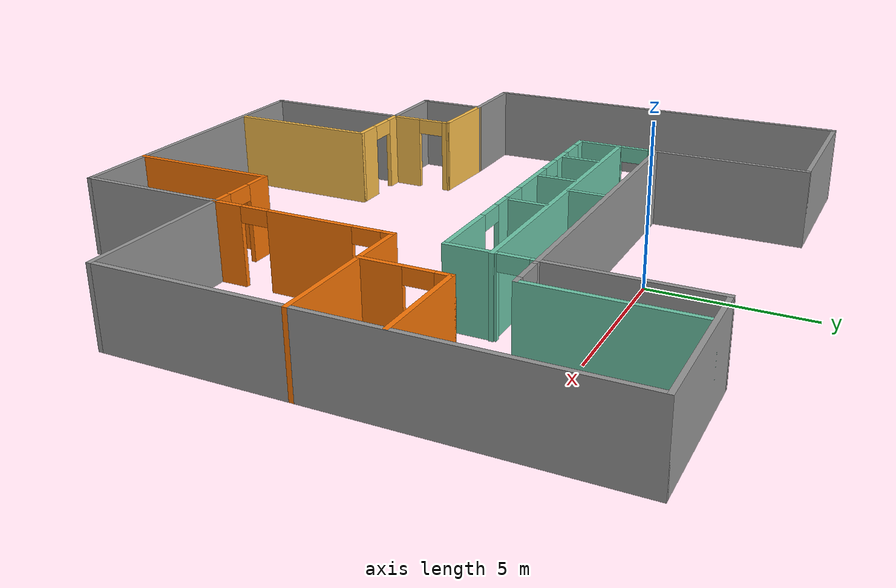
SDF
<?xml version='1.0'?>
<sdf version='1.6'>
  <model name='building'>
    <pose frame=''>-0.225451 -6.28405 0 0 -0 0</pose>
    <link name='Wall_0'>
      <collision name='Wall_0_Collision'>
        <geometry>
          <box>
            <size>5 0.15 2.5</size>
          </box>
        </geometry>
        <pose frame=''>0 0 1.25 0 -0 0</pose>
      </collision>
      <visual name='Wall_0_Visual'>
        <pose frame=''>0 0 1.25 0 -0 0</pose>
        <geometry>
          <box>
            <size>5 0.15 2.5</size>
          </box>
        </geometry>
        <material>
          <script>
            <uri>file://media/materials/scripts/gazebo.material</uri>
            <name>Gazebo/Grey</name>
          </script>
          <ambient>1 1 1 1</ambient>
        </material>
        <meta>
          <layer>0</layer>
        </meta>
      </visual>
      <pose frame=''>-7.34955 9.75605 0 0 -0 0</pose>
    </link>
    <link name='Wall_1'>
      <collision name='Wall_1_Collision'>
        <geometry>
          <box>
            <size>5 0.15 2.5</size>
          </box>
        </geometry>
        <pose frame=''>0 0 1.25 0 -0 0</pose>
      </collision>
      <visual name='Wall_1_Visual'>
        <pose frame=''>0 0 1.25 0 -0 0</pose>
        <geometry>
          <box>
            <size>5 0.15 2.5</size>
          </box>
        </geometry>
        <material>
          <script>
            <uri>file://media/materials/scripts/gazebo.material</uri>
            <name>Gazebo/Grey</name>
          </script>
          <ambient>1 1 1 1</ambient>
        </material>
        <meta>
          <layer>0</layer>
        </meta>
      </visual>
      <pose frame=''>-4.92455 7.33105 0 0 0 -1.5708</pose>
    </link>
    <link name='Wall_10'>
      <collision name='Wall_10_Collision'>
        <geometry>
          <box>
            <size>2.5 0.15 2.5</size>
          </box>
        </geometry>
        <pose frame=''>0 0 1.25 0 -0 0</pose>
      </collision>
      <visual name='Wall_10_Visual'>
        <pose frame=''>0 0 1.25 0 -0 0</pose>
        <geometry>
          <box>
            <size>2.5 0.15 2.5</size>
          </box>
        </geometry>
        <material>
          <script>
            <uri>file://media/materials/scripts/gazebo.material</uri>
            <name>Gazebo/Grey</name>
          </script>
          <ambient>1 1 1 1</ambient>
        </material>
        <meta>
          <layer>0</layer>
        </meta>
      </visual>
      <pose frame=''>-6.09955 -4.81295 0 0 -0 3.14159</pose>
    </link>
    <link name='Wall_11'>
      <collision name='Wall_11_Collision'>
        <geometry>
          <box>
            <size>2.344 0.15 2.5</size>
          </box>
        </geometry>
        <pose frame=''>0 0 1.25 0 -0 0</pose>
      </collision>
      <visual name='Wall_11_Visual'>
        <pose frame=''>0 0 1.25 0 -0 0</pose>
        <geometry>
          <box>
            <size>2.344 0.15 2.5</size>
          </box>
        </geometry>
        <material>
          <script>
            <uri>file://media/materials/scripts/gazebo.material</uri>
            <name>Gazebo/Grey</name>
          </script>
          <ambient>1 1 1 1</ambient>
        </material>
        <meta>
          <layer>0</layer>
        </meta>
      </visual>
      <pose frame=''>-7.27455 -3.71595 0 0 -0 1.5708</pose>
    </link>
    <link name='Wall_12'>
      <collision name='Wall_12_Collision'>
        <geometry>
          <box>
            <size>2.5 0.15 2.5</size>
          </box>
        </geometry>
        <pose frame=''>0 0 1.25 0 -0 0</pose>
      </collision>
      <visual name='Wall_12_Visual'>
        <pose frame=''>0 0 1.25 0 -0 0</pose>
        <geometry>
          <box>
            <size>2.5 0.15 2.5</size>
          </box>
        </geometry>
        <material>
          <script>
            <uri>file://media/materials/scripts/gazebo.material</uri>
            <name>Gazebo/Grey</name>
          </script>
          <ambient>1 1 1 1</ambient>
        </material>
        <meta>
          <layer>0</layer>
        </meta>
      </visual>
      <pose frame=''>-8.44955 -2.61895 0 0 -0 3.14159</pose>
    </link>
    <link name='Wall_13'>
      <collision name='Wall_13_Collision'>
        <geometry>
          <box>
            <size>12.5259 0.15 2.5</size>
          </box>
        </geometry>
        <pose frame=''>0 0 1.25 0 -0 0</pose>
      </collision>
      <visual name='Wall_13_Visual'>
        <pose frame=''>0 0 1.25 0 -0 0</pose>
        <geometry>
          <box>
            <size>12.5259 0.15 2.5</size>
          </box>
        </geometry>
        <material>
          <script>
            <uri>file://media/materials/scripts/gazebo.material</uri>
            <name>Gazebo/Grey</name>
          </script>
          <ambient>1 1 1 1</ambient>
        </material>
        <meta>
          <layer>0</layer>
        </meta>
      </visual>
      <pose frame=''>-9.69955 3.56855 0 0 -0 1.58292</pose>
    </link>
    <link name='Wall_15'>
      <pose frame=''>-3.74955 -4.81295 0 0 -0 0</pose>
      <visual name='Wall_15_Visual_0'>
        <pose frame=''>-0.942883 0 1.25 0 -0 0</pose>
        <geometry>
          <box>
            <size>0.614234 0.15 2.5</size>
          </box>
        </geometry>
        <material>
          <script>
            <uri>file://media/materials/scripts/gazebo.material</uri>
            <name>Gazebo/Grey</name>
          </script>
          <ambient>1 0.764706 0.305882 1</ambient>
        </material>
        <meta>
          <layer>0</layer>
        </meta>
      </visual>
      <collision name='Wall_15_Collision_0'>
        <geometry>
          <box>
            <size>0.614234 0.15 2.5</size>
          </box>
        </geometry>
        <pose frame=''>-0.942883 0 1.25 0 -0 0</pose>
      </collision>
      <visual name='Wall_15_Visual_1'>
        <pose frame=''>0.757117 0 1.25 0 -0 0</pose>
        <geometry>
          <box>
            <size>0.985766 0.15 2.5</size>
          </box>
        </geometry>
        <material>
          <script>
            <uri>file://media/materials/scripts/gazebo.material</uri>
            <name>Gazebo/Grey</name>
          </script>
          <ambient>1 0.764706 0.305882 1</ambient>
        </material>
        <meta>
          <layer>0</layer>
        </meta>
      </visual>
      <collision name='Wall_15_Collision_1'>
        <geometry>
          <box>
            <size>0.985766 0.15 2.5</size>
          </box>
        </geometry>
        <pose frame=''>0.757117 0 1.25 0 -0 0</pose>
      </collision>
      <visual name='Wall_15_Visual_2'>
        <pose frame=''>-0.185766 0 2.25 0 -0 0</pose>
        <geometry>
          <box>
            <size>0.9 0.15 0.5</size>
          </box>
        </geometry>
        <material>
          <script>
            <uri>file://media/materials/scripts/gazebo.material</uri>
            <name>Gazebo/Grey</name>
          </script>
          <ambient>1 0.764706 0.305882 1</ambient>
        </material>
        <meta>
          <layer>0</layer>
        </meta>
      </visual>
      <collision name='Wall_15_Collision_2'>
        <geometry>
          <box>
            <size>0.9 0.15 0.5</size>
          </box>
        </geometry>
        <pose frame=''>-0.185766 0 2.25 0 -0 0</pose>
      </collision>
    </link>
    <link name='Wall_16'>
      <collision name='Wall_16_Collision'>
        <geometry>
          <box>
            <size>5 0.15 2.5</size>
          </box>
        </geometry>
        <pose frame=''>0 0 1.25 0 -0 0</pose>
      </collision>
      <visual name='Wall_16_Visual'>
        <pose frame=''>0 0 1.25 0 -0 0</pose>
        <geometry>
          <box>
            <size>5 0.15 2.5</size>
          </box>
        </geometry>
        <material>
          <script>
            <uri>file://media/materials/scripts/gazebo.material</uri>
            <name>Gazebo/Grey</name>
          </script>
          <ambient>1 0.764706 0.305882 1</ambient>
        </material>
        <meta>
          <layer>0</layer>
        </meta>
      </visual>
      <pose frame=''>-2.57455 -7.23795 0 0 0 -1.5708</pose>
    </link>
    <link name='Wall_18'>
      <pose frame=''>3.75045 -5.09395 0 0 -0 3.14159</pose>
      <visual name='Wall_18_Visual_0'>
        <pose frame=''>-0.900353 0 1.25 0 -0 0</pose>
        <geometry>
          <box>
            <size>0.699294 0.15 2.5</size>
          </box>
        </geometry>
        <material>
          <script>
            <uri>file://media/materials/scripts/gazebo.material</uri>
            <name>Gazebo/Grey</name>
          </script>
          <ambient>0.996078 0.47451 0.0196078 1</ambient>
        </material>
        <meta>
          <layer>0</layer>
        </meta>
      </visual>
      <collision name='Wall_18_Collision_0'>
        <geometry>
          <box>
            <size>0.699294 0.15 2.5</size>
          </box>
        </geometry>
        <pose frame=''>-0.900353 0 1.25 0 -0 0</pose>
      </collision>
      <visual name='Wall_18_Visual_1'>
        <pose frame=''>0.799647 0 1.25 0 -0 0</pose>
        <geometry>
          <box>
            <size>0.900706 0.15 2.5</size>
          </box>
        </geometry>
        <material>
          <script>
            <uri>file://media/materials/scripts/gazebo.material</uri>
            <name>Gazebo/Grey</name>
          </script>
          <ambient>0.996078 0.47451 0.0196078 1</ambient>
        </material>
        <meta>
          <layer>0</layer>
        </meta>
      </visual>
      <collision name='Wall_18_Collision_1'>
        <geometry>
          <box>
            <size>0.900706 0.15 2.5</size>
          </box>
        </geometry>
        <pose frame=''>0.799647 0 1.25 0 -0 0</pose>
      </collision>
      <visual name='Wall_18_Visual_2'>
        <pose frame=''>-0.100706 0 2.25 0 -0 0</pose>
        <geometry>
          <box>
            <size>0.9 0.15 0.5</size>
          </box>
        </geometry>
        <material>
          <script>
            <uri>file://media/materials/scripts/gazebo.material</uri>
            <name>Gazebo/Grey</name>
          </script>
          <ambient>0.996078 0.47451 0.0196078 1</ambient>
        </material>
        <meta>
          <layer>0</layer>
        </meta>
      </visual>
      <collision name='Wall_18_Collision_2'>
        <geometry>
          <box>
            <size>0.9 0.15 0.5</size>
          </box>
        </geometry>
        <pose frame=''>-0.100706 0 2.25 0 -0 0</pose>
      </collision>
    </link>
    <link name='Wall_2'>
      <collision name='Wall_2_Collision'>
        <geometry>
          <box>
            <size>10 0.15 2.5</size>
          </box>
        </geometry>
        <pose frame=''>0 0 1.25 0 -0 0</pose>
      </collision>
      <visual name='Wall_2_Visual'>
        <pose frame=''>0 0 1.25 0 -0 0</pose>
        <geometry>
          <box>
            <size>10 0.15 2.5</size>
          </box>
        </geometry>
        <material>
          <script>
            <uri>file://media/materials/scripts/gazebo.material</uri>
            <name>Gazebo/Grey</name>
          </script>
          <ambient>1 1 1 1</ambient>
        </material>
        <meta>
          <layer>0</layer>
        </meta>
      </visual>
      <pose frame=''>0.000451 4.90605 0 0 -0 0</pose>
    </link>
    <link name='Wall_21'>
      <collision name='Wall_21_Collision'>
        <geometry>
          <box>
            <size>4.813 0.15 2.5</size>
          </box>
        </geometry>
        <pose frame=''>0 0 1.25 0 -0 0</pose>
      </collision>
      <visual name='Wall_21_Visual'>
        <pose frame=''>0 0 1.25 0 -0 0</pose>
        <geometry>
          <box>
            <size>4.813 0.15 2.5</size>
          </box>
        </geometry>
        <material>
          <script>
            <uri>file://media/materials/scripts/gazebo.material</uri>
            <name>Gazebo/Grey</name>
          </script>
          <ambient>0.996078 0.47451 0.0196078 1</ambient>
        </material>
        <meta>
          <layer>0</layer>
        </meta>
      </visual>
      <pose frame=''>2.57545 -7.42545 0 0 0 -1.5708</pose>
    </link>
    <link name='Wall_23'>
      <pose frame=''>-4.92455 -3.76295 0 0 -0 1.5708</pose>
      <visual name='Wall_23_Visual_0'>
        <pose frame=''>-0.57792 0 1.25 0 -0 0</pose>
        <geometry>
          <box>
            <size>1.09416 0.15 2.5</size>
          </box>
        </geometry>
        <material>
          <script>
            <uri>file://media/materials/scripts/gazebo.material</uri>
            <name>Gazebo/Grey</name>
          </script>
          <ambient>1 0.764706 0.305882 1</ambient>
        </material>
        <meta>
          <layer>0</layer>
        </meta>
      </visual>
      <collision name='Wall_23_Collision_0'>
        <geometry>
          <box>
            <size>1.09416 0.15 2.5</size>
          </box>
        </geometry>
        <pose frame=''>-0.57792 0 1.25 0 -0 0</pose>
      </collision>
      <visual name='Wall_23_Visual_1'>
        <pose frame=''>0.99708 0 1.25 0 -0 0</pose>
        <geometry>
          <box>
            <size>0.255839 0.15 2.5</size>
          </box>
        </geometry>
        <material>
          <script>
            <uri>file://media/materials/scripts/gazebo.material</uri>
            <name>Gazebo/Grey</name>
          </script>
          <ambient>1 0.764706 0.305882 1</ambient>
        </material>
        <meta>
          <layer>0</layer>
        </meta>
      </visual>
      <collision name='Wall_23_Collision_1'>
        <geometry>
          <box>
            <size>0.255839 0.15 2.5</size>
          </box>
        </geometry>
        <pose frame=''>0.99708 0 1.25 0 -0 0</pose>
      </collision>
      <visual name='Wall_23_Visual_2'>
        <pose frame=''>0.419161 0 2.25 0 -0 0</pose>
        <geometry>
          <box>
            <size>0.9 0.15 0.5</size>
          </box>
        </geometry>
        <material>
          <script>
            <uri>file://media/materials/scripts/gazebo.material</uri>
            <name>Gazebo/Grey</name>
          </script>
          <ambient>1 0.764706 0.305882 1</ambient>
        </material>
        <meta>
          <layer>0</layer>
        </meta>
      </visual>
      <collision name='Wall_23_Collision_2'>
        <geometry>
          <box>
            <size>0.9 0.15 0.5</size>
          </box>
        </geometry>
        <pose frame=''>0.419161 0 2.25 0 -0 0</pose>
      </collision>
    </link>
    <link name='Wall_24'>
      <collision name='Wall_24_Collision'>
        <geometry>
          <box>
            <size>2.50188 0.15 2.5</size>
          </box>
        </geometry>
        <pose frame=''>0 0 1.25 0 -0 0</pose>
      </collision>
      <visual name='Wall_24_Visual'>
        <pose frame=''>0 0 1.25 0 -0 0</pose>
        <geometry>
          <box>
            <size>2.50188 0.15 2.5</size>
          </box>
        </geometry>
        <material>
          <script>
            <uri>file://media/materials/scripts/gazebo.material</uri>
            <name>Gazebo/Grey</name>
          </script>
          <ambient>1 0.764706 0.305882 1</ambient>
        </material>
        <meta>
          <layer>0</layer>
        </meta>
      </visual>
      <pose frame=''>-6.09955 -2.66595 0 0 -0 3.10161</pose>
    </link>
    <link name='Wall_26'>
      <pose frame=''>4.92545 -2.16895 0 0 -0 1.5708</pose>
      <visual name='Wall_26_Visual_0'>
        <pose frame=''>-2.49069 0 1.25 0 -0 0</pose>
        <geometry>
          <box>
            <size>1.01863 0.15 2.5</size>
          </box>
        </geometry>
        <material>
          <script>
            <uri>file://media/materials/scripts/gazebo.material</uri>
            <name>Gazebo/Grey</name>
          </script>
          <ambient>0.996078 0.47451 0.0196078 1</ambient>
        </material>
        <meta>
          <layer>0</layer>
        </meta>
      </visual>
      <collision name='Wall_26_Collision_0'>
        <geometry>
          <box>
            <size>1.01863 0.15 2.5</size>
          </box>
        </geometry>
        <pose frame=''>-2.49069 0 1.25 0 -0 0</pose>
      </collision>
      <visual name='Wall_26_Visual_1'>
        <pose frame=''>0.299469 0 1.25 0 -0 0</pose>
        <geometry>
          <box>
            <size>2.76168 0.15 2.5</size>
          </box>
        </geometry>
        <material>
          <script>
            <uri>file://media/materials/scripts/gazebo.material</uri>
            <name>Gazebo/Grey</name>
          </script>
          <ambient>0.996078 0.47451 0.0196078 1</ambient>
        </material>
        <meta>
          <layer>0</layer>
        </meta>
      </visual>
      <collision name='Wall_26_Collision_1'>
        <geometry>
          <box>
            <size>2.76168 0.15 2.5</size>
          </box>
        </geometry>
        <pose frame=''>0.299469 0 1.25 0 -0 0</pose>
      </collision>
      <visual name='Wall_26_Visual_2'>
        <pose frame=''>2.79015 0 1.25 0 -0 0</pose>
        <geometry>
          <box>
            <size>0.419692 0.15 2.5</size>
          </box>
        </geometry>
        <material>
          <script>
            <uri>file://media/materials/scripts/gazebo.material</uri>
            <name>Gazebo/Grey</name>
          </script>
          <ambient>0.996078 0.47451 0.0196078 1</ambient>
        </material>
        <meta>
          <layer>0</layer>
        </meta>
      </visual>
      <collision name='Wall_26_Collision_2'>
        <geometry>
          <box>
            <size>0.419692 0.15 2.5</size>
          </box>
        </geometry>
        <pose frame=''>2.79015 0 1.25 0 -0 0</pose>
      </collision>
      <visual name='Wall_26_Visual_3'>
        <pose frame=''>-1.53137 0 2.25 0 -0 0</pose>
        <geometry>
          <box>
            <size>0.9 0.15 0.5</size>
          </box>
        </geometry>
        <material>
          <script>
            <uri>file://media/materials/scripts/gazebo.material</uri>
            <name>Gazebo/Grey</name>
          </script>
          <ambient>0.996078 0.47451 0.0196078 1</ambient>
        </material>
        <meta>
          <layer>0</layer>
        </meta>
      </visual>
      <collision name='Wall_26_Collision_3'>
        <geometry>
          <box>
            <size>0.9 0.15 0.5</size>
          </box>
        </geometry>
        <pose frame=''>-1.53137 0 2.25 0 -0 0</pose>
      </collision>
      <visual name='Wall_26_Visual_4'>
        <pose frame=''>2.13031 0 2.25 0 -0 0</pose>
        <geometry>
          <box>
            <size>0.9 0.15 0.5</size>
          </box>
        </geometry>
        <material>
          <script>
            <uri>file://media/materials/scripts/gazebo.material</uri>
            <name>Gazebo/Grey</name>
          </script>
          <ambient>0.996078 0.47451 0.0196078 1</ambient>
        </material>
        <meta>
          <layer>0</layer>
        </meta>
      </visual>
      <collision name='Wall_26_Collision_4'>
        <geometry>
          <box>
            <size>0.9 0.15 0.5</size>
          </box>
        </geometry>
        <pose frame=''>2.13031 0 2.25 0 -0 0</pose>
      </collision>
    </link>
    <link name='Wall_27'>
      <collision name='Wall_27_Collision'>
        <geometry>
          <box>
            <size>5 0.15 2.5</size>
          </box>
        </geometry>
        <pose frame=''>0 0 1.25 0 -0 0</pose>
      </collision>
      <visual name='Wall_27_Visual'>
        <pose frame=''>0 0 1.25 0 -0 0</pose>
        <geometry>
          <box>
            <size>5 0.15 2.5</size>
          </box>
        </geometry>
        <material>
          <script>
            <uri>file://media/materials/scripts/gazebo.material</uri>
            <name>Gazebo/Grey</name>
          </script>
          <ambient>0.996078 0.47451 0.0196078 1</ambient>
        </material>
        <meta>
          <layer>0</layer>
        </meta>
      </visual>
      <pose frame=''>7.35045 0.756049 0 0 -0 0</pose>
    </link>
    <link name='Wall_29'>
      <pose frame=''>6.65238 2.07506 0 0 -0 1.5708</pose>
      <visual name='Wall_29_Visual_0'>
        <pose frame=''>-0.708109 0 1.25 0 -0 0</pose>
        <geometry>
          <box>
            <size>1.33378 0.15 2.5</size>
          </box>
        </geometry>
        <material>
          <script>
            <uri>file://media/materials/scripts/gazebo.material</uri>
            <name>Gazebo/Grey</name>
          </script>
          <ambient>0.996078 0.47451 0.0196078 1</ambient>
        </material>
        <meta>
          <layer>0</layer>
        </meta>
      </visual>
      <collision name='Wall_29_Collision_0'>
        <geometry>
          <box>
            <size>1.33378 0.15 2.5</size>
          </box>
        </geometry>
        <pose frame=''>-0.708109 0 1.25 0 -0 0</pose>
      </collision>
      <visual name='Wall_29_Visual_1'>
        <pose frame=''>1.11689 0 1.25 0 -0 0</pose>
        <geometry>
          <box>
            <size>0.516217 0.15 2.5</size>
          </box>
        </geometry>
        <material>
          <script>
            <uri>file://media/materials/scripts/gazebo.material</uri>
            <name>Gazebo/Grey</name>
          </script>
          <ambient>0.996078 0.47451 0.0196078 1</ambient>
        </material>
        <meta>
          <layer>0</layer>
        </meta>
      </visual>
      <collision name='Wall_29_Collision_1'>
        <geometry>
          <box>
            <size>0.516217 0.15 2.5</size>
          </box>
        </geometry>
        <pose frame=''>1.11689 0 1.25 0 -0 0</pose>
      </collision>
      <visual name='Wall_29_Visual_2'>
        <pose frame=''>0.408783 0 2.25 0 -0 0</pose>
        <geometry>
          <box>
            <size>0.9 0.15 0.5</size>
          </box>
        </geometry>
        <material>
          <script>
            <uri>file://media/materials/scripts/gazebo.material</uri>
            <name>Gazebo/Grey</name>
          </script>
          <ambient>0.996078 0.47451 0.0196078 1</ambient>
        </material>
        <meta>
          <layer>0</layer>
        </meta>
      </visual>
      <collision name='Wall_29_Collision_2'>
        <geometry>
          <box>
            <size>0.9 0.15 0.5</size>
          </box>
        </geometry>
        <pose frame=''>0.408783 0 2.25 0 -0 0</pose>
      </collision>
    </link>
    <link name='Wall_3'>
      <collision name='Wall_3_Collision'>
        <geometry>
          <box>
            <size>5 0.15 2.5</size>
          </box>
        </geometry>
        <pose frame=''>0 0 1.25 0 -0 0</pose>
      </collision>
      <visual name='Wall_3_Visual'>
        <pose frame=''>0 0 1.25 0 -0 0</pose>
        <geometry>
          <box>
            <size>5 0.15 2.5</size>
          </box>
        </geometry>
        <material>
          <script>
            <uri>file://media/materials/scripts/gazebo.material</uri>
            <name>Gazebo/Grey</name>
          </script>
          <ambient>1 1 1 1</ambient>
        </material>
        <meta>
          <layer>0</layer>
        </meta>
      </visual>
      <pose frame=''>4.92545 7.33105 0 0 -0 1.5708</pose>
    </link>
    <link name='Wall_30'>
      <collision name='Wall_30_Collision'>
        <geometry>
          <box>
            <size>3.25 0.15 2.5</size>
          </box>
        </geometry>
        <pose frame=''>0 0 1.25 0 -0 0</pose>
      </collision>
      <visual name='Wall_30_Visual'>
        <pose frame=''>0 0 1.25 0 -0 0</pose>
        <geometry>
          <box>
            <size>3.25 0.15 2.5</size>
          </box>
        </geometry>
        <material>
          <script>
            <uri>file://media/materials/scripts/gazebo.material</uri>
            <name>Gazebo/Grey</name>
          </script>
          <ambient>0.996078 0.47451 0.0196078 1</ambient>
        </material>
        <meta>
          <layer>0</layer>
        </meta>
      </visual>
      <pose frame=''>8.20237 3.37506 0 0 -0 0</pose>
    </link>
    <link name='Wall_32'>
      <pose frame=''>5.60045 4.90605 0 0 -0 0</pose>
      <visual name='Wall_32_Visual_0'>
        <pose frame=''>-0.605415 0 1.25 0 -0 0</pose>
        <geometry>
          <box>
            <size>0.289171 0.15 2.5</size>
          </box>
        </geometry>
        <material>
          <script>
            <uri>file://media/materials/scripts/gazebo.material</uri>
            <name>Gazebo/Grey</name>
          </script>
          <ambient>1 1 1 1</ambient>
        </material>
        <meta>
          <layer>0</layer>
        </meta>
      </visual>
      <collision name='Wall_32_Collision_0'>
        <geometry>
          <box>
            <size>0.289171 0.15 2.5</size>
          </box>
        </geometry>
        <pose frame=''>-0.605415 0 1.25 0 -0 0</pose>
      </collision>
      <visual name='Wall_32_Visual_1'>
        <pose frame=''>0.594585 0 1.25 0 -0 0</pose>
        <geometry>
          <box>
            <size>0.310829 0.15 2.5</size>
          </box>
        </geometry>
        <material>
          <script>
            <uri>file://media/materials/scripts/gazebo.material</uri>
            <name>Gazebo/Grey</name>
          </script>
          <ambient>1 1 1 1</ambient>
        </material>
        <meta>
          <layer>0</layer>
        </meta>
      </visual>
      <collision name='Wall_32_Collision_1'>
        <geometry>
          <box>
            <size>0.310829 0.15 2.5</size>
          </box>
        </geometry>
        <pose frame=''>0.594585 0 1.25 0 -0 0</pose>
      </collision>
      <visual name='Wall_32_Visual_2'>
        <pose frame=''>-0.010829 0 2.25 0 -0 0</pose>
        <geometry>
          <box>
            <size>0.9 0.15 0.5</size>
          </box>
        </geometry>
        <material>
          <script>
            <uri>file://media/materials/scripts/gazebo.material</uri>
            <name>Gazebo/Grey</name>
          </script>
          <ambient>1 1 1 1</ambient>
        </material>
        <meta>
          <layer>0</layer>
        </meta>
      </visual>
      <collision name='Wall_32_Collision_2'>
        <geometry>
          <box>
            <size>0.9 0.15 0.5</size>
          </box>
        </geometry>
        <pose frame=''>-0.010829 0 2.25 0 -0 0</pose>
      </collision>
    </link>
    <link name='Wall_33'>
      <collision name='Wall_33_Collision'>
        <geometry>
          <box>
            <size>5 0.15 2.5</size>
          </box>
        </geometry>
        <pose frame=''>0 0 1.25 0 -0 0</pose>
      </collision>
      <visual name='Wall_33_Visual'>
        <pose frame=''>0 0 1.25 0 -0 0</pose>
        <geometry>
          <box>
            <size>5 0.15 2.5</size>
          </box>
        </geometry>
        <material>
          <script>
            <uri>file://media/materials/scripts/gazebo.material</uri>
            <name>Gazebo/Grey</name>
          </script>
          <ambient>0.435294 0.796078 0.67451 1</ambient>
        </material>
        <meta>
          <layer>0</layer>
        </meta>
      </visual>
      <pose frame=''>6.27545 7.33105 0 0 -0 1.5708</pose>
    </link>
    <link name='Wall_35'>
      <pose frame=''>-4.92455 3.60605 0 0 0 -1.5708</pose>
      <visual name='Wall_35_Visual_0'>
        <pose frame=''>-1.20915 0 1.25 0 -0 0</pose>
        <geometry>
          <box>
            <size>0.3317 0.15 2.5</size>
          </box>
        </geometry>
        <material>
          <script>
            <uri>file://media/materials/scripts/gazebo.material</uri>
            <name>Gazebo/Grey</name>
          </script>
          <ambient>0.435294 0.796078 0.67451 1</ambient>
        </material>
        <meta>
          <layer>0</layer>
        </meta>
      </visual>
      <collision name='Wall_35_Collision_0'>
        <geometry>
          <box>
            <size>0.3317 0.15 2.5</size>
          </box>
        </geometry>
        <pose frame=''>-1.20915 0 1.25 0 -0 0</pose>
      </collision>
      <visual name='Wall_35_Visual_1'>
        <pose frame=''>0.61585 0 1.25 0 -0 0</pose>
        <geometry>
          <box>
            <size>1.5183 0.15 2.5</size>
          </box>
        </geometry>
        <material>
          <script>
            <uri>file://media/materials/scripts/gazebo.material</uri>
            <name>Gazebo/Grey</name>
          </script>
          <ambient>0.435294 0.796078 0.67451 1</ambient>
        </material>
        <meta>
          <layer>0</layer>
        </meta>
      </visual>
      <collision name='Wall_35_Collision_1'>
        <geometry>
          <box>
            <size>1.5183 0.15 2.5</size>
          </box>
        </geometry>
        <pose frame=''>0.61585 0 1.25 0 -0 0</pose>
      </collision>
      <visual name='Wall_35_Visual_2'>
        <pose frame=''>-0.5933 0 2.25 0 -0 0</pose>
        <geometry>
          <box>
            <size>0.9 0.15 0.5</size>
          </box>
        </geometry>
        <material>
          <script>
            <uri>file://media/materials/scripts/gazebo.material</uri>
            <name>Gazebo/Grey</name>
          </script>
          <ambient>0.435294 0.796078 0.67451 1</ambient>
        </material>
        <meta>
          <layer>0</layer>
        </meta>
      </visual>
      <collision name='Wall_35_Collision_2'>
        <geometry>
          <box>
            <size>0.9 0.15 0.5</size>
          </box>
        </geometry>
        <pose frame=''>-0.5933 0 2.25 0 -0 0</pose>
      </collision>
    </link>
    <link name='Wall_36'>
      <pose frame=''>0.000451 2.30605 0 0 -0 0</pose>
      <visual name='Wall_36_Visual_0'>
        <pose frame=''>-4.74054 0 1.25 0 -0 0</pose>
        <geometry>
          <box>
            <size>0.518918 0.15 2.5</size>
          </box>
        </geometry>
        <material>
          <script>
            <uri>file://media/materials/scripts/gazebo.material</uri>
            <name>Gazebo/Grey</name>
          </script>
          <ambient>0.435294 0.796078 0.67451 1</ambient>
        </material>
        <meta>
          <layer>0</layer>
        </meta>
      </visual>
      <collision name='Wall_36_Collision_0'>
        <geometry>
          <box>
            <size>0.518918 0.15 2.5</size>
          </box>
        </geometry>
        <pose frame=''>-4.74054 0 1.25 0 -0 0</pose>
      </collision>
      <visual name='Wall_36_Visual_1'>
        <pose frame=''>-3.12154 0 1.25 0 -0 0</pose>
        <geometry>
          <box>
            <size>0.919085 0.15 2.5</size>
          </box>
        </geometry>
        <material>
          <script>
            <uri>file://media/materials/scripts/gazebo.material</uri>
            <name>Gazebo/Grey</name>
          </script>
          <ambient>0.435294 0.796078 0.67451 1</ambient>
        </material>
        <meta>
          <layer>0</layer>
        </meta>
      </visual>
      <collision name='Wall_36_Collision_1'>
        <geometry>
          <box>
            <size>0.919085 0.15 2.5</size>
          </box>
        </geometry>
        <pose frame=''>-3.12154 0 1.25 0 -0 0</pose>
      </collision>
      <visual name='Wall_36_Visual_2'>
        <pose frame=''>-0.79418 0 1.25 0 -0 0</pose>
        <geometry>
          <box>
            <size>1.93563 0.15 2.5</size>
          </box>
        </geometry>
        <material>
          <script>
            <uri>file://media/materials/scripts/gazebo.material</uri>
            <name>Gazebo/Grey</name>
          </script>
          <ambient>0.435294 0.796078 0.67451 1</ambient>
        </material>
        <meta>
          <layer>0</layer>
        </meta>
      </visual>
      <collision name='Wall_36_Collision_2'>
        <geometry>
          <box>
            <size>1.93563 0.15 2.5</size>
          </box>
        </geometry>
        <pose frame=''>-0.79418 0 1.25 0 -0 0</pose>
      </collision>
      <visual name='Wall_36_Visual_3'>
        <pose frame=''>1.42617 0 1.25 0 -0 0</pose>
        <geometry>
          <box>
            <size>0.705075 0.15 2.5</size>
          </box>
        </geometry>
        <material>
          <script>
            <uri>file://media/materials/scripts/gazebo.material</uri>
            <name>Gazebo/Grey</name>
          </script>
          <ambient>0.435294 0.796078 0.67451 1</ambient>
        </material>
        <meta>
          <layer>0</layer>
        </meta>
      </visual>
      <collision name='Wall_36_Collision_3'>
        <geometry>
          <box>
            <size>0.705075 0.15 2.5</size>
          </box>
        </geometry>
        <pose frame=''>1.42617 0 1.25 0 -0 0</pose>
      </collision>
      <visual name='Wall_36_Visual_4'>
        <pose frame=''>3.83935 0 1.25 0 -0 0</pose>
        <geometry>
          <box>
            <size>2.32129 0.15 2.5</size>
          </box>
        </geometry>
        <material>
          <script>
            <uri>file://media/materials/scripts/gazebo.material</uri>
            <name>Gazebo/Grey</name>
          </script>
          <ambient>0.435294 0.796078 0.67451 1</ambient>
        </material>
        <meta>
          <layer>0</layer>
        </meta>
      </visual>
      <collision name='Wall_36_Collision_4'>
        <geometry>
          <box>
            <size>2.32129 0.15 2.5</size>
          </box>
        </geometry>
        <pose frame=''>3.83935 0 1.25 0 -0 0</pose>
      </collision>
      <visual name='Wall_36_Visual_5'>
        <pose frame=''>-4.03108 0 2.25 0 -0 0</pose>
        <geometry>
          <box>
            <size>0.9 0.15 0.5</size>
          </box>
        </geometry>
        <material>
          <script>
            <uri>file://media/materials/scripts/gazebo.material</uri>
            <name>Gazebo/Grey</name>
          </script>
          <ambient>0.435294 0.796078 0.67451 1</ambient>
        </material>
        <meta>
          <layer>0</layer>
        </meta>
      </visual>
      <collision name='Wall_36_Collision_5'>
        <geometry>
          <box>
            <size>0.9 0.15 0.5</size>
          </box>
        </geometry>
        <pose frame=''>-4.03108 0 2.25 0 -0 0</pose>
      </collision>
      <visual name='Wall_36_Visual_6'>
        <pose frame=''>-2.212 0 2.25 0 -0 0</pose>
        <geometry>
          <box>
            <size>0.9 0.15 0.5</size>
          </box>
        </geometry>
        <material>
          <script>
            <uri>file://media/materials/scripts/gazebo.material</uri>
            <name>Gazebo/Grey</name>
          </script>
          <ambient>0.435294 0.796078 0.67451 1</ambient>
        </material>
        <meta>
          <layer>0</layer>
        </meta>
      </visual>
      <collision name='Wall_36_Collision_6'>
        <geometry>
          <box>
            <size>0.9 0.15 0.5</size>
          </box>
        </geometry>
        <pose frame=''>-2.212 0 2.25 0 -0 0</pose>
      </collision>
      <visual name='Wall_36_Visual_7'>
        <pose frame=''>0.623636 0 2.25 0 -0 0</pose>
        <geometry>
          <box>
            <size>0.9 0.15 0.5</size>
          </box>
        </geometry>
        <material>
          <script>
            <uri>file://media/materials/scripts/gazebo.material</uri>
            <name>Gazebo/Grey</name>
          </script>
          <ambient>0.435294 0.796078 0.67451 1</ambient>
        </material>
        <meta>
          <layer>0</layer>
        </meta>
      </visual>
      <collision name='Wall_36_Collision_7'>
        <geometry>
          <box>
            <size>0.9 0.15 0.5</size>
          </box>
        </geometry>
        <pose frame=''>0.623636 0 2.25 0 -0 0</pose>
      </collision>
      <visual name='Wall_36_Visual_8'>
        <pose frame=''>2.22871 0 2.25 0 -0 0</pose>
        <geometry>
          <box>
            <size>0.9 0.15 0.5</size>
          </box>
        </geometry>
        <material>
          <script>
            <uri>file://media/materials/scripts/gazebo.material</uri>
            <name>Gazebo/Grey</name>
          </script>
          <ambient>0.435294 0.796078 0.67451 1</ambient>
        </material>
        <meta>
          <layer>0</layer>
        </meta>
      </visual>
      <collision name='Wall_36_Collision_8'>
        <geometry>
          <box>
            <size>0.9 0.15 0.5</size>
          </box>
        </geometry>
        <pose frame=''>2.22871 0 2.25 0 -0 0</pose>
      </collision>
    </link>
    <link name='Wall_37'>
      <pose frame=''>4.92545 3.60605 0 0 -0 1.5708</pose>
      <visual name='Wall_37_Visual_0'>
        <pose frame=''>-0.589099 0 1.25 0 -0 0</pose>
        <geometry>
          <box>
            <size>1.5718 0.15 2.5</size>
          </box>
        </geometry>
        <material>
          <script>
            <uri>file://media/materials/scripts/gazebo.material</uri>
            <name>Gazebo/Grey</name>
          </script>
          <ambient>0.435294 0.796078 0.67451 1</ambient>
        </material>
        <meta>
          <layer>0</layer>
        </meta>
      </visual>
      <collision name='Wall_37_Collision_0'>
        <geometry>
          <box>
            <size>1.5718 0.15 2.5</size>
          </box>
        </geometry>
        <pose frame=''>-0.589099 0 1.25 0 -0 0</pose>
      </collision>
      <visual name='Wall_37_Visual_1'>
        <pose frame=''>1.2359 0 1.25 0 -0 0</pose>
        <geometry>
          <box>
            <size>0.278198 0.15 2.5</size>
          </box>
        </geometry>
        <material>
          <script>
            <uri>file://media/materials/scripts/gazebo.material</uri>
            <name>Gazebo/Grey</name>
          </script>
          <ambient>0.435294 0.796078 0.67451 1</ambient>
        </material>
        <meta>
          <layer>0</layer>
        </meta>
      </visual>
      <collision name='Wall_37_Collision_1'>
        <geometry>
          <box>
            <size>0.278198 0.15 2.5</size>
          </box>
        </geometry>
        <pose frame=''>1.2359 0 1.25 0 -0 0</pose>
      </collision>
      <visual name='Wall_37_Visual_2'>
        <pose frame=''>0.646802 0 2.25 0 -0 0</pose>
        <geometry>
          <box>
            <size>0.9 0.15 0.5</size>
          </box>
        </geometry>
        <material>
          <script>
            <uri>file://media/materials/scripts/gazebo.material</uri>
            <name>Gazebo/Grey</name>
          </script>
          <ambient>0.435294 0.796078 0.67451 1</ambient>
        </material>
        <meta>
          <layer>0</layer>
        </meta>
      </visual>
      <collision name='Wall_37_Collision_2'>
        <geometry>
          <box>
            <size>0.9 0.15 0.5</size>
          </box>
        </geometry>
        <pose frame=''>0.646802 0 2.25 0 -0 0</pose>
      </collision>
    </link>
    <link name='Wall_39'>
      <collision name='Wall_39_Collision'>
        <geometry>
          <box>
            <size>10 0.15 2.5</size>
          </box>
        </geometry>
        <pose frame=''>0 0 1.25 0 -0 0</pose>
      </collision>
      <visual name='Wall_39_Visual'>
        <pose frame=''>0 0 1.25 0 -0 0</pose>
        <geometry>
          <box>
            <size>10 0.15 2.5</size>
          </box>
        </geometry>
        <material>
          <script>
            <uri>file://media/materials/scripts/gazebo.material</uri>
            <name>Gazebo/Grey</name>
          </script>
          <ambient>0.435294 0.796078 0.67451 1</ambient>
        </material>
        <meta>
          <layer>0</layer>
        </meta>
      </visual>
      <pose frame=''>0.03833 3.66432 0 0 -0 0</pose>
    </link>
    <link name='Wall_4'>
      <collision name='Wall_4_Collision'>
        <geometry>
          <box>
            <size>5 0.15 2.5</size>
          </box>
        </geometry>
        <pose frame=''>0 0 1.25 0 -0 0</pose>
      </collision>
      <visual name='Wall_4_Visual'>
        <pose frame=''>0 0 1.25 0 -0 0</pose>
        <geometry>
          <box>
            <size>5 0.15 2.5</size>
          </box>
        </geometry>
        <material>
          <script>
            <uri>file://media/materials/scripts/gazebo.material</uri>
            <name>Gazebo/Grey</name>
          </script>
          <ambient>1 1 1 1</ambient>
        </material>
        <meta>
          <layer>0</layer>
        </meta>
      </visual>
      <pose frame=''>7.35045 9.75605 0 0 -0 0</pose>
    </link>
    <link name='Wall_41'>
      <collision name='Wall_41_Collision'>
        <geometry>
          <box>
            <size>1.25 0.15 2.5</size>
          </box>
        </geometry>
        <pose frame=''>0 0 1.25 0 -0 0</pose>
      </collision>
      <visual name='Wall_41_Visual'>
        <pose frame=''>0 0 1.25 0 -0 0</pose>
        <geometry>
          <box>
            <size>1.25 0.15 2.5</size>
          </box>
        </geometry>
        <material>
          <script>
            <uri>file://media/materials/scripts/gazebo.material</uri>
            <name>Gazebo/Grey</name>
          </script>
          <ambient>0.435294 0.796078 0.67451 1</ambient>
        </material>
        <meta>
          <layer>0</layer>
        </meta>
      </visual>
      <pose frame=''>-0.231953 4.29138 0 0 0 -1.5708</pose>
    </link>
    <link name='Wall_43'>
      <collision name='Wall_43_Collision'>
        <geometry>
          <box>
            <size>1.25 0.15 2.5</size>
          </box>
        </geometry>
        <pose frame=''>0 0 1.25 0 -0 0</pose>
      </collision>
      <visual name='Wall_43_Visual'>
        <pose frame=''>0 0 1.25 0 -0 0</pose>
        <geometry>
          <box>
            <size>1.25 0.15 2.5</size>
          </box>
        </geometry>
        <material>
          <script>
            <uri>file://media/materials/scripts/gazebo.material</uri>
            <name>Gazebo/Grey</name>
          </script>
          <ambient>0.435294 0.796078 0.67451 1</ambient>
        </material>
        <meta>
          <layer>0</layer>
        </meta>
      </visual>
      <pose frame=''>-3.12109 3.00732 0 0 0 -1.5708</pose>
    </link>
    <link name='Wall_45'>
      <collision name='Wall_45_Collision'>
        <geometry>
          <box>
            <size>1.25 0.15 2.5</size>
          </box>
        </geometry>
        <pose frame=''>0 0 1.25 0 -0 0</pose>
      </collision>
      <visual name='Wall_45_Visual'>
        <pose frame=''>0 0 1.25 0 -0 0</pose>
        <geometry>
          <box>
            <size>1.25 0.15 2.5</size>
          </box>
        </geometry>
        <material>
          <script>
            <uri>file://media/materials/scripts/gazebo.material</uri>
            <name>Gazebo/Grey</name>
          </script>
          <ambient>0.435294 0.796078 0.67451 1</ambient>
        </material>
        <meta>
          <layer>0</layer>
        </meta>
      </visual>
      <pose frame=''>-1.08799 3.00732 0 0 0 -1.5708</pose>
    </link>
    <link name='Wall_47'>
      <collision name='Wall_47_Collision'>
        <geometry>
          <box>
            <size>1.25 0.15 2.5</size>
          </box>
        </geometry>
        <pose frame=''>0 0 1.25 0 -0 0</pose>
      </collision>
      <visual name='Wall_47_Visual'>
        <pose frame=''>0 0 1.25 0 -0 0</pose>
        <geometry>
          <box>
            <size>1.25 0.15 2.5</size>
          </box>
        </geometry>
        <material>
          <script>
            <uri>file://media/materials/scripts/gazebo.material</uri>
            <name>Gazebo/Grey</name>
          </script>
          <ambient>0.435294 0.796078 0.67451 1</ambient>
        </material>
        <meta>
          <layer>0</layer>
        </meta>
      </visual>
      <pose frame=''>1.21261 3.06082 0 0 0 -1.5708</pose>
    </link>
    <link name='Wall_5'>
      <collision name='Wall_5_Collision'>
        <geometry>
          <box>
            <size>15 0.15 2.5</size>
          </box>
        </geometry>
        <pose frame=''>0 0 1.25 0 -0 0</pose>
      </collision>
      <visual name='Wall_5_Visual'>
        <pose frame=''>0 0 1.25 0 -0 0</pose>
        <geometry>
          <box>
            <size>15 0.15 2.5</size>
          </box>
        </geometry>
        <material>
          <script>
            <uri>file://media/materials/scripts/gazebo.material</uri>
            <name>Gazebo/Grey</name>
          </script>
          <ambient>1 1 1 1</ambient>
        </material>
        <meta>
          <layer>0</layer>
        </meta>
      </visual>
      <pose frame=''>9.77545 2.33105 0 0 0 -1.5708</pose>
    </link>
    <link name='Wall_6'>
      <collision name='Wall_6_Collision'>
        <geometry>
          <box>
            <size>5 0.15 2.5</size>
          </box>
        </geometry>
        <pose frame=''>0 0 1.25 0 -0 0</pose>
      </collision>
      <visual name='Wall_6_Visual'>
        <pose frame=''>0 0 1.25 0 -0 0</pose>
        <geometry>
          <box>
            <size>5 0.15 2.5</size>
          </box>
        </geometry>
        <material>
          <script>
            <uri>file://media/materials/scripts/gazebo.material</uri>
            <name>Gazebo/Grey</name>
          </script>
          <ambient>1 1 1 1</ambient>
        </material>
        <meta>
          <layer>0</layer>
        </meta>
      </visual>
      <pose frame=''>7.35045 -5.09395 0 0 -0 3.14159</pose>
    </link>
    <link name='Wall_7'>
      <collision name='Wall_7_Collision'>
        <geometry>
          <box>
            <size>4.81285 0.15 2.5</size>
          </box>
        </geometry>
        <pose frame=''>0 0 1.25 0 -0 0</pose>
      </collision>
      <visual name='Wall_7_Visual'>
        <pose frame=''>0 0 1.25 0 -0 0</pose>
        <geometry>
          <box>
            <size>4.81285 0.15 2.5</size>
          </box>
        </geometry>
        <material>
          <script>
            <uri>file://media/materials/scripts/gazebo.material</uri>
            <name>Gazebo/Grey</name>
          </script>
          <ambient>1 1 1 1</ambient>
        </material>
        <meta>
          <layer>0</layer>
        </meta>
      </visual>
      <pose frame=''>4.92545 -7.42545 0 0 0 -1.5708</pose>
    </link>
    <link name='Wall_8'>
      <collision name='Wall_8_Collision'>
        <geometry>
          <box>
            <size>10 0.15 2.5</size>
          </box>
        </geometry>
        <pose frame=''>0 0 1.25 0 -0 0</pose>
      </collision>
      <visual name='Wall_8_Visual'>
        <pose frame=''>0 0 1.25 0 -0 0</pose>
        <geometry>
          <box>
            <size>10 0.15 2.5</size>
          </box>
        </geometry>
        <material>
          <script>
            <uri>file://media/materials/scripts/gazebo.material</uri>
            <name>Gazebo/Grey</name>
          </script>
          <ambient>1 1 1 1</ambient>
        </material>
        <meta>
          <layer>0</layer>
        </meta>
      </visual>
      <pose frame=''>0.000451 -9.75695 0 0 -0 3.14159</pose>
    </link>
    <link name='Wall_9'>
      <collision name='Wall_9_Collision'>
        <geometry>
          <box>
            <size>5.09358 0.15 2.5</size>
          </box>
        </geometry>
        <pose frame=''>0 0 1.25 0 -0 0</pose>
      </collision>
      <visual name='Wall_9_Visual'>
        <pose frame=''>0 0 1.25 0 -0 0</pose>
        <geometry>
          <box>
            <size>5.09358 0.15 2.5</size>
          </box>
        </geometry>
        <material>
          <script>
            <uri>file://media/materials/scripts/gazebo.material</uri>
            <name>Gazebo/Grey</name>
          </script>
          <ambient>1 1 1 1</ambient>
        </material>
        <meta>
          <layer>0</layer>
        </meta>
      </visual>
      <pose frame=''>-4.92455 -7.28495 0 0 -0 1.5708</pose>
    </link>
    <static>1</static>
  </model>
</sdf>
